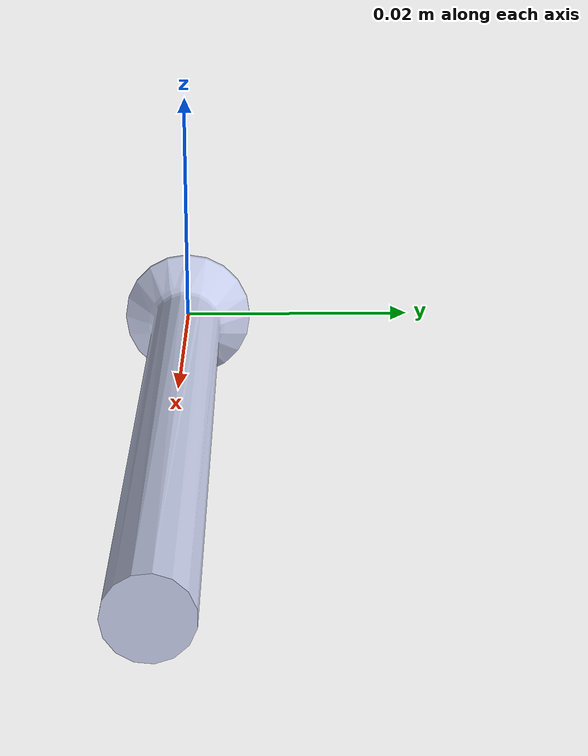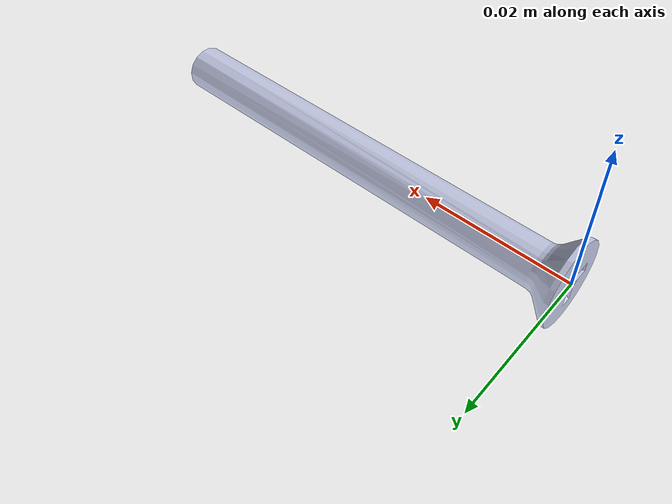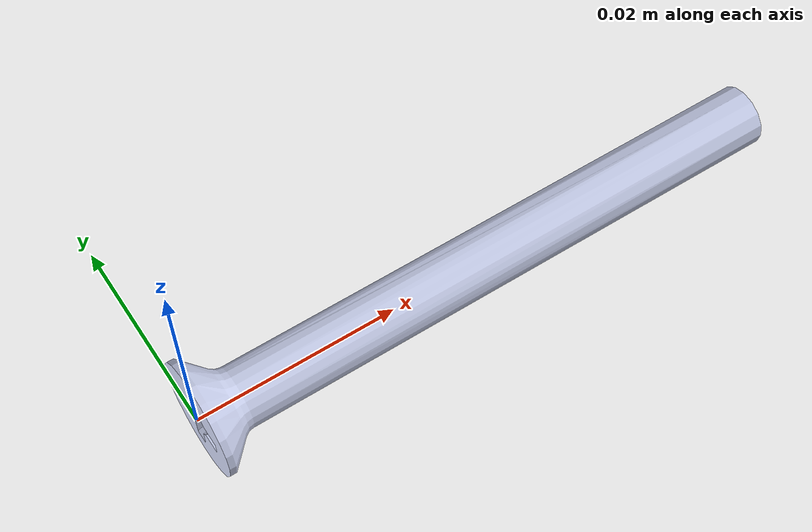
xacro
<?xml version="1.0" encoding="utf-8"?>
<robot name="screw2(6ea)" xmlns:xacro="http://www.ros.org/wiki/xacro">
  <link name="screw2(6ea)">
    <inertial>
      <origin
        xyz="0.028536 -6.84910000438268E-19 -7.1577E-12"
        rpy="0 0 0" />
      <mass
        value="0.0017863" />
      <inertia
        ixx="9.88E-09"
        ixy="1.96610000000017E-19"
        ixz="-2.8268E-16"
        iyy="5.862E-07"
        iyz="3.2286E-20"
        izz="5.862E-07" />
    </inertial>
    <visual>
      <origin
        xyz="0 0 0"
        rpy="1.5707963267949 0 0" />
      <geometry>
        <mesh
          filename="package://cai_env/meshes/screw2(6ea).STL" />
      </geometry>
      <material
        name="">
        <color
          rgba="0.79216 0.81961 0.93333 1" />
        <texture
          filename="package://cai_env/textures/" />
      </material>
    </visual>
    <collision>
      <origin
        xyz="0 0 0"
        rpy="1.5707963267949 0 0" />
      <geometry>
        <mesh
          filename="package://cai_env/meshes/screw2(6ea).STL" />
      </geometry>
    </collision>
  </link>
  <gazebo reference="screw2(6ea)">
    <material>Gazebo/GreyTransparent</material>
  </gazebo>
</robot>
